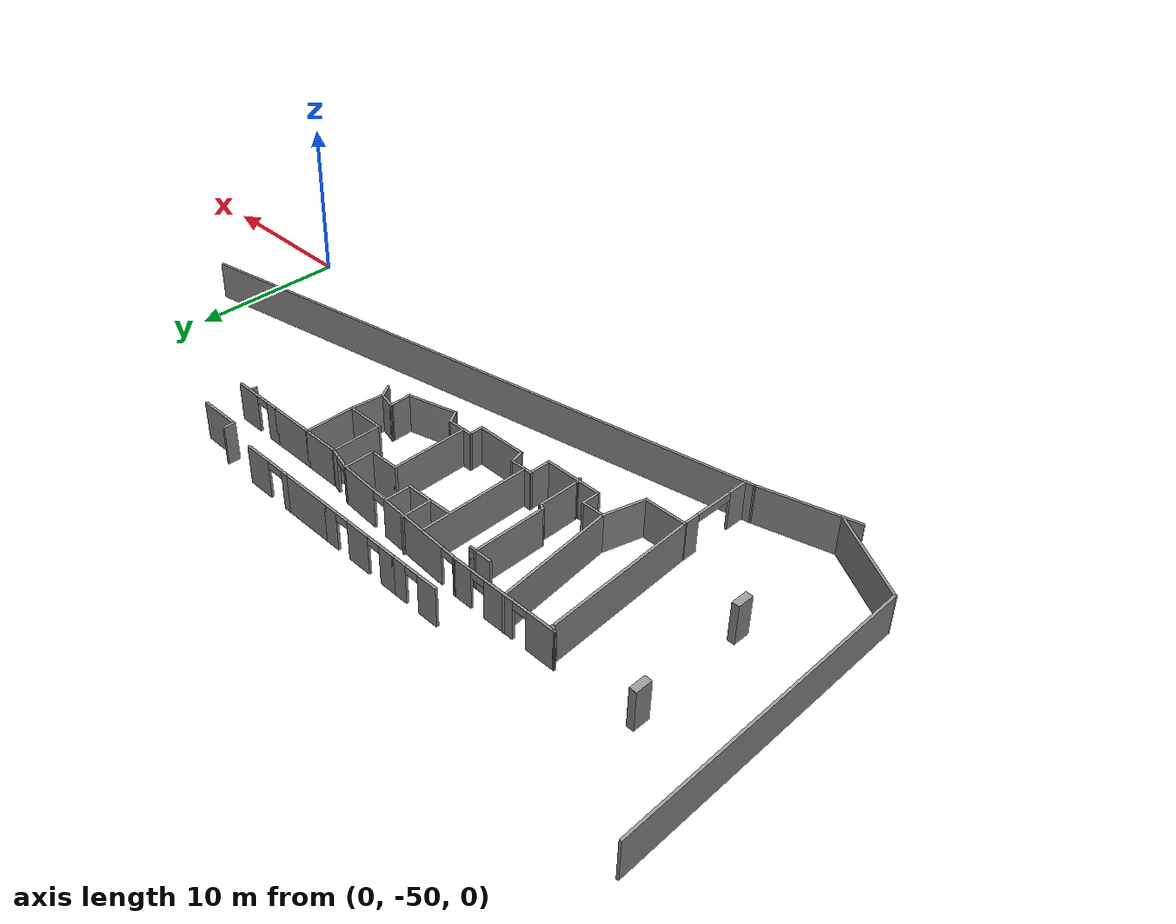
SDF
<sdf version="1.6">
 <model name="car_parking_underground_big_1">
  <pose>-9.36123 -7.37411 0 0 -0 0</pose>
  <link name="Wall_100">
   <collision name="Wall_100_Collision">
    <geometry><box><size>2.75 0.15 2.5</size></box></geometry>
    <pose>0 0 1.25 0 -0 0</pose>
   </collision>
   <visual name="Wall_100_Visual">
    <pose>0 0 1.25 0 -0 0</pose>
    <geometry><box><size>2.75 0.15 2.5</size></box></geometry>
    <material>
     <script><uri>file://media/materials/scripts/gazebo.material</uri><name>Gazebo/Grey</name></script>
     <ambient>1 1 1 1</ambient>
    </material>
    <meta><layer>0</layer></meta>
   </visual>
   <pose>-23.5938 -36.292 0 0 -0 -1.8326</pose>
  </link>
  <link name="Wall_101">
   <collision name="Wall_101_Collision">
    <geometry><box><size>2.75 0.15 2.5</size></box></geometry>
    <pose>0 0 1.25 0 -0 0</pose>
   </collision>
   <visual name="Wall_101_Visual">
    <pose>0 0 1.25 0 -0 0</pose>
    <geometry><box><size>2.75 0.15 2.5</size></box></geometry>
    <material>
     <script><uri>file://media/materials/scripts/gazebo.material</uri><name>Gazebo/Grey</name></script>
     <ambient>1 1 1 1</ambient>
    </material>
    <meta><layer>0</layer></meta>
   </visual>
   <pose>-25.2302 -37.5477 0 0 -0 3.14159</pose>
  </link>
  <link name="Wall_104">
   <pose>-26.5302 -39.9727 0 0 -0 -1.5708</pose>
   <visual name="Wall_104_Visual_0">
    <pose>-1.95044 0 1.25 0 -0 0</pose>
    <geometry><box><size>1.09911 0.15 2.5</size></box></geometry>
    <material>
     <script><uri>file://media/materials/scripts/gazebo.material</uri><name>Gazebo/Grey</name></script>
     <ambient>1 1 1 1</ambient>
    </material>
    <meta><layer>0</layer></meta>
   </visual>
   <collision name="Wall_104_Collision_0">
    <geometry><box><size>1.09911 0.15 2.5</size></box></geometry>
    <pose>-1.95044 0 1.25 0 -0 0</pose>
   </collision>
   <visual name="Wall_104_Visual_1">
    <pose>1.79956 0 1.25 0 -0 0</pose>
    <geometry><box><size>1.40089 0.15 2.5</size></box></geometry>
    <material>
     <script><uri>file://media/materials/scripts/gazebo.material</uri><name>Gazebo/Grey</name></script>
     <ambient>1 1 1 1</ambient>
    </material>
    <meta><layer>0</layer></meta>
   </visual>
   <collision name="Wall_104_Collision_1">
    <geometry><box><size>1.40089 0.15 2.5</size></box></geometry>
    <pose>1.79956 0 1.25 0 -0 0</pose>
   </collision>
   <visual name="Wall_104_Visual_2">
    <pose>-0.150887 0 2.25 0 -0 0</pose>
    <geometry><box><size>2.5 0.15 0.5</size></box></geometry>
    <material>
     <script><uri>file://media/materials/scripts/gazebo.material</uri><name>Gazebo/Grey</name></script>
     <ambient>1 1 1 1</ambient>
    </material>
    <meta><layer>0</layer></meta>
   </visual>
   <collision name="Wall_104_Collision_2">
    <geometry><box><size>2.5 0.15 0.5</size></box></geometry>
    <pose>-0.150887 0 2.25 0 -0 0</pose>
   </collision>
  </link>
  <link name="Wall_18">
   <collision name="Wall_18_Collision">
    <geometry><box><size>6 0.15 2.5</size></box></geometry>
    <pose>0 0 1.25 0 -0 0</pose>
   </collision>
   <visual name="Wall_18_Visual">
    <pose>0 0 1.25 0 -0 0</pose>
    <geometry><box><size>6 0.15 2.5</size></box></geometry>
    <material>
     <script><uri>file://media/materials/scripts/gazebo.material</uri><name>Gazebo/Grey</name></script>
     <ambient>1 1 1 1</ambient>
    </material>
    <meta><layer>0</layer></meta>
   </visual>
   <pose>-34.2044 -42.241 0 0 -0 2.61799</pose>
  </link>
  <link name="Wall_19">
   <collision name="Wall_19_Collision">
    <geometry><box><size>19.6303 0.15 2.5</size></box></geometry>
    <pose>0 0 1.25 0 -0 0</pose>
   </collision>
   <visual name="Wall_19_Visual">
    <pose>0 0 1.25 0 -0 0</pose>
    <geometry><box><size>19.6303 0.15 2.5</size></box></geometry>
    <material>
     <script><uri>file://media/materials/scripts/gazebo.material</uri><name>Gazebo/Grey</name></script>
     <ambient>1 1 1 1</ambient>
    </material>
    <meta><layer>0</layer></meta>
   </visual>
   <pose>-36.9603 -31.0526 0 0 -0 1.59367</pose>
  </link>
  <link name="Wall_457">
   <collision name="Wall_457_Collision">
    <geometry><box><size>10.0585 0.15 2.5</size></box></geometry>
    <pose>0 0 1.25 0 -0 0</pose>
   </collision>
   <visual name="Wall_457_Visual">
    <pose>0 0 1.25 0 -0 0</pose>
    <geometry><box><size>10.0585 0.15 2.5</size></box></geometry>
    <material>
     <script><uri>file://media/materials/scripts/gazebo.material</uri><name>Gazebo/Grey</name></script>
     <ambient>1 1 1 1</ambient>
    </material>
    <meta><layer>0</layer></meta>
   </visual>
   <pose>-26.7892 -32.6002 0 0 -0 1.62309</pose>
  </link>
  <link name="Wall_458">
   <collision name="Wall_458_Collision">
    <geometry><box><size>0.5 0.15 2.5</size></box></geometry>
    <pose>0 0 1.25 0 -0 0</pose>
   </collision>
   <visual name="Wall_458_Visual">
    <pose>0 0 1.25 0 -0 0</pose>
    <geometry><box><size>0.5 0.15 2.5</size></box></geometry>
    <material>
     <script><uri>file://media/materials/scripts/gazebo.material</uri><name>Gazebo/Grey</name></script>
     <ambient>1 1 1 1</ambient>
    </material>
    <meta><layer>0</layer></meta>
   </visual>
   <pose>-27.1997 -27.5652 0 0 -0 2.61799</pose>
  </link>
  <link name="Wall_652">
   <collision name="Wall_652_Collision">
    <geometry><box><size>6 0.15 2.5</size></box></geometry>
    <pose>0 0 1.25 0 -0 0</pose>
   </collision>
   <visual name="Wall_652_Visual">
    <pose>0 0 1.25 0 -0 0</pose>
    <geometry><box><size>6 0.15 2.5</size></box></geometry>
    <material>
     <script><uri>file://media/materials/scripts/gazebo.material</uri><name>Gazebo/Grey</name></script>
     <ambient>1 1 1 1</ambient>
    </material>
    <meta><layer>0</layer></meta>
   </visual>
   <pose>-29.9002 -43.2359 0 0 -0 0.261799</pose>
  </link>
  <link name="Wall_653">
   <collision name="Wall_653_Collision">
    <geometry><box><size>38.8036 0.15 2.5</size></box></geometry>
    <pose>0 0 1.25 0 -0 0</pose>
   </collision>
   <visual name="Wall_653_Visual">
    <pose>0 0 1.25 0 -0 0</pose>
    <geometry><box><size>38.8036 0.15 2.5</size></box></geometry>
    <material>
     <script><uri>file://media/materials/scripts/gazebo.material</uri><name>Gazebo/Grey</name></script>
     <ambient>1 1 1 1</ambient>
    </material>
    <meta><layer>0</layer></meta>
   </visual>
   <pose>-8.07245 -38.9528 0 0 -0 0.18347</pose>
  </link>
  <link name="Wall_687">
   <collision name="Wall_687_Collision">
    <geometry><box><size>1.05022 0.45 2.5</size></box></geometry>
    <pose>0 0 1.25 0 -0 0</pose>
   </collision>
   <visual name="Wall_687_Visual">
    <pose>0 0 1.25 0 -0 0</pose>
    <geometry><box><size>1.05022 0.45 2.5</size></box></geometry>
    <material>
     <script><uri>file://media/materials/scripts/gazebo.material</uri><name>Gazebo/Grey</name></script>
     <ambient>1 1 1 1</ambient>
    </material>
    <meta><layer>0</layer></meta>
   </visual>
   <pose>-32.2333 -27.9329 0 0 -0 -1.5708</pose>
  </link>
  <link name="Wall_689">
   <collision name="Wall_689_Collision">
    <geometry><box><size>1.05 0.45 2.5</size></box></geometry>
    <pose>0 0 1.25 0 -0 0</pose>
   </collision>
   <visual name="Wall_689_Visual">
    <pose>0 0 1.25 0 -0 0</pose>
    <geometry><box><size>1.05 0.45 2.5</size></box></geometry>
    <material>
     <script><uri>file://media/materials/scripts/gazebo.material</uri><name>Gazebo/Grey</name></script>
     <ambient>1 1 1 1</ambient>
    </material>
    <meta><layer>0</layer></meta>
   </visual>
   <pose>-31.9473 -35.3724 0 0 -0 -1.5708</pose>
  </link>
  <link name="Wall_698">
   <pose>-23.9263 -27.4777 0 0 -0 0</pose>
   <visual name="Wall_698_Visual_0">
    <pose>-2.55593 0 1.25 0 -0 0</pose>
    <geometry><box><size>1.88815 0.15 2.5</size></box></geometry>
    <material>
     <script><uri>file://media/materials/scripts/gazebo.material</uri><name>Gazebo/Grey</name></script>
     <ambient>1 1 1 1</ambient>
    </material>
    <meta><layer>0</layer></meta>
   </visual>
   <collision name="Wall_698_Collision_0">
    <geometry><box><size>1.88815 0.15 2.5</size></box></geometry>
    <pose>-2.55593 0 1.25 0 -0 0</pose>
   </collision>
   <visual name="Wall_698_Visual_1">
    <pose>0.293776 0 1.25 0 -0 0</pose>
    <geometry><box><size>2.01126 0.15 2.5</size></box></geometry>
    <material>
     <script><uri>file://media/materials/scripts/gazebo.material</uri><name>Gazebo/Grey</name></script>
     <ambient>1 1 1 1</ambient>
    </material>
    <meta><layer>0</layer></meta>
   </visual>
   <collision name="Wall_698_Collision_1">
    <geometry><box><size>2.01126 0.15 2.5</size></box></geometry>
    <pose>0.293776 0 1.25 0 -0 0</pose>
   </collision>
   <visual name="Wall_698_Visual_2">
    <pose>2.8497 0 1.25 0 -0 0</pose>
    <geometry><box><size>1.30059 0.15 2.5</size></box></geometry>
    <material>
     <script><uri>file://media/materials/scripts/gazebo.material</uri><name>Gazebo/Grey</name></script>
     <ambient>1 1 1 1</ambient>
    </material>
    <meta><layer>0</layer></meta>
   </visual>
   <collision name="Wall_698_Collision_2">
    <geometry><box><size>1.30059 0.15 2.5</size></box></geometry>
    <pose>2.8497 0 1.25 0 -0 0</pose>
   </collision>
   <visual name="Wall_698_Visual_3">
    <pose>-1.16185 0 2.25 0 -0 0</pose>
    <geometry><box><size>0.9 0.15 0.5</size></box></geometry>
    <material>
     <script><uri>file://media/materials/scripts/gazebo.material</uri><name>Gazebo/Grey</name></script>
     <ambient>1 1 1 1</ambient>
    </material>
    <meta><layer>0</layer></meta>
   </visual>
   <collision name="Wall_698_Collision_3">
    <geometry><box><size>0.9 0.15 0.5</size></box></geometry>
    <pose>-1.16185 0 2.25 0 -0 0</pose>
   </collision>
   <visual name="Wall_698_Visual_4">
    <pose>1.74941 0 2.25 0 -0 0</pose>
    <geometry><box><size>0.9 0.15 0.5</size></box></geometry>
    <material>
     <script><uri>file://media/materials/scripts/gazebo.material</uri><name>Gazebo/Grey</name></script>
     <ambient>1 1 1 1</ambient>
    </material>
    <meta><layer>0</layer></meta>
   </visual>
   <collision name="Wall_698_Collision_4">
    <geometry><box><size>0.9 0.15 0.5</size></box></geometry>
    <pose>1.74941 0 2.25 0 -0 0</pose>
   </collision>
  </link>
  <link name="Wall_699">
   <pose>-15.8646 -27.7688 0 0 -0 -0.062715</pose>
   <visual name="Wall_699_Visual_0">
    <pose>-4.63374 0 1.25 0 -0 0</pose>
    <geometry><box><size>0.174125 0.15 2.5</size></box></geometry>
    <material>
     <script><uri>file://media/materials/scripts/gazebo.material</uri><name>Gazebo/Grey</name></script>
     <ambient>1 1 1 1</ambient>
    </material>
    <meta><layer>0</layer></meta>
   </visual>
   <collision name="Wall_699_Collision_0">
    <geometry><box><size>0.174125 0.15 2.5</size></box></geometry>
    <pose>-4.63374 0 1.25 0 -0 0</pose>
   </collision>
   <visual name="Wall_699_Visual_1">
    <pose>-1.24354 0 1.25 0 -0 0</pose>
    <geometry><box><size>4.80628 0.15 2.5</size></box></geometry>
    <material>
     <script><uri>file://media/materials/scripts/gazebo.material</uri><name>Gazebo/Grey</name></script>
     <ambient>1 1 1 1</ambient>
    </material>
    <meta><layer>0</layer></meta>
   </visual>
   <collision name="Wall_699_Collision_1">
    <geometry><box><size>4.80628 0.15 2.5</size></box></geometry>
    <pose>-1.24354 0 1.25 0 -0 0</pose>
   </collision>
   <visual name="Wall_699_Visual_2">
    <pose>3.3902 0 1.25 0 -0 0</pose>
    <geometry><box><size>2.6612 0.15 2.5</size></box></geometry>
    <material>
     <script><uri>file://media/materials/scripts/gazebo.material</uri><name>Gazebo/Grey</name></script>
     <ambient>1 1 1 1</ambient>
    </material>
    <meta><layer>0</layer></meta>
   </visual>
   <collision name="Wall_699_Collision_2">
    <geometry><box><size>2.6612 0.15 2.5</size></box></geometry>
    <pose>3.3902 0 1.25 0 -0 0</pose>
   </collision>
   <visual name="Wall_699_Visual_3">
    <pose>-4.09668 0 2.25 0 -0 0</pose>
    <geometry><box><size>0.9 0.15 0.5</size></box></geometry>
    <material>
     <script><uri>file://media/materials/scripts/gazebo.material</uri><name>Gazebo/Grey</name></script>
     <ambient>1 1 1 1</ambient>
    </material>
    <meta><layer>0</layer></meta>
   </visual>
   <collision name="Wall_699_Collision_3">
    <geometry><box><size>0.9 0.15 0.5</size></box></geometry>
    <pose>-4.09668 0 2.25 0 -0 0</pose>
   </collision>
   <visual name="Wall_699_Visual_4">
    <pose>1.6096 0 2.25 0 -0 0</pose>
    <geometry><box><size>0.9 0.15 0.5</size></box></geometry>
    <material>
     <script><uri>file://media/materials/scripts/gazebo.material</uri><name>Gazebo/Grey</name></script>
     <ambient>1 1 1 1</ambient>
    </material>
    <meta><layer>0</layer></meta>
   </visual>
   <collision name="Wall_699_Collision_4">
    <geometry><box><size>0.9 0.15 0.5</size></box></geometry>
    <pose>1.6096 0 2.25 0 -0 0</pose>
   </collision>
  </link>
  <link name="Wall_700">
   <pose>-10.4552 -28.2671 0 0 -0 -0.261799</pose>
   <visual name="Wall_700_Visual_0">
    <pose>-0.768246 0 1.25 0 -0 0</pose>
    <geometry><box><size>0.213508 0.15 2.5</size></box></geometry>
    <material>
     <script><uri>file://media/materials/scripts/gazebo.material</uri><name>Gazebo/Grey</name></script>
     <ambient>1 1 1 1</ambient>
    </material>
    <meta><layer>0</layer></meta>
   </visual>
   <collision name="Wall_700_Collision_0">
    <geometry><box><size>0.213508 0.15 2.5</size></box></geometry>
    <pose>-0.768246 0 1.25 0 -0 0</pose>
   </collision>
   <visual name="Wall_700_Visual_1">
    <pose>0.556754 0 1.25 0 -0 0</pose>
    <geometry><box><size>0.636492 0.15 2.5</size></box></geometry>
    <material>
     <script><uri>file://media/materials/scripts/gazebo.material</uri><name>Gazebo/Grey</name></script>
     <ambient>1 1 1 1</ambient>
    </material>
    <meta><layer>0</layer></meta>
   </visual>
   <collision name="Wall_700_Collision_1">
    <geometry><box><size>0.636492 0.15 2.5</size></box></geometry>
    <pose>0.556754 0 1.25 0 -0 0</pose>
   </collision>
   <visual name="Wall_700_Visual_2">
    <pose>-0.211492 0 2.25 0 -0 0</pose>
    <geometry><box><size>0.9 0.15 0.5</size></box></geometry>
    <material>
     <script><uri>file://media/materials/scripts/gazebo.material</uri><name>Gazebo/Grey</name></script>
     <ambient>1 1 1 1</ambient>
    </material>
    <meta><layer>0</layer></meta>
   </visual>
   <collision name="Wall_700_Collision_2">
    <geometry><box><size>0.9 0.15 0.5</size></box></geometry>
    <pose>-0.211492 0 2.25 0 -0 0</pose>
   </collision>
  </link>
  <link name="Wall_701">
   <collision name="Wall_701_Collision">
    <geometry><box><size>2.5 0.15 2.5</size></box></geometry>
    <pose>0 0 1.25 0 -0 0</pose>
   </collision>
   <visual name="Wall_701_Visual">
    <pose>0 0 1.25 0 -0 0</pose>
    <geometry><box><size>2.5 0.15 2.5</size></box></geometry>
    <material>
     <script><uri>file://media/materials/scripts/gazebo.material</uri><name>Gazebo/Grey</name></script>
     <ambient>1 1 1 1</ambient>
    </material>
    <meta><layer>0</layer></meta>
   </visual>
   <pose>-8.50746 -28.4741 0 0 -0 0</pose>
  </link>
  <link name="Wall_702">
   <collision name="Wall_702_Collision">
    <geometry><box><size>3 0.15 2.5</size></box></geometry>
    <pose>0 0 1.25 0 -0 0</pose>
   </collision>
   <visual name="Wall_702_Visual">
    <pose>0 0 1.25 0 -0 0</pose>
    <geometry><box><size>3 0.15 2.5</size></box></geometry>
    <material>
     <script><uri>file://media/materials/scripts/gazebo.material</uri><name>Gazebo/Grey</name></script>
     <ambient>1 1 1 1</ambient>
    </material>
    <meta><layer>0</layer></meta>
   </visual>
   <pose>-5.90745 -28.4741 0 0 -0 0</pose>
  </link>
  <link name="Wall_703">
   <pose>-2.80746 -28.4741 0 0 -0 0</pose>
   <visual name="Wall_703_Visual_0">
    <pose>-1.29346 0 1.25 0 -0 0</pose>
    <geometry><box><size>0.913086 0.15 2.5</size></box></geometry>
    <material>
     <script><uri>file://media/materials/scripts/gazebo.material</uri><name>Gazebo/Grey</name></script>
     <ambient>1 1 1 1</ambient>
    </material>
    <meta><layer>0</layer></meta>
   </visual>
   <collision name="Wall_703_Collision_0">
    <geometry><box><size>0.913086 0.15 2.5</size></box></geometry>
    <pose>-1.29346 0 1.25 0 -0 0</pose>
   </collision>
   <visual name="Wall_703_Visual_1">
    <pose>0.906543 0 1.25 0 -0 0</pose>
    <geometry><box><size>1.68691 0.15 2.5</size></box></geometry>
    <material>
     <script><uri>file://media/materials/scripts/gazebo.material</uri><name>Gazebo/Grey</name></script>
     <ambient>1 1 1 1</ambient>
    </material>
    <meta><layer>0</layer></meta>
   </visual>
   <collision name="Wall_703_Collision_1">
    <geometry><box><size>1.68691 0.15 2.5</size></box></geometry>
    <pose>0.906543 0 1.25 0 -0 0</pose>
   </collision>
   <visual name="Wall_703_Visual_2">
    <pose>-0.386914 0 2.25 0 -0 0</pose>
    <geometry><box><size>0.9 0.15 0.5</size></box></geometry>
    <material>
     <script><uri>file://media/materials/scripts/gazebo.material</uri><name>Gazebo/Grey</name></script>
     <ambient>1 1 1 1</ambient>
    </material>
    <meta><layer>0</layer></meta>
   </visual>
   <collision name="Wall_703_Collision_2">
    <geometry><box><size>0.9 0.15 0.5</size></box></geometry>
    <pose>-0.386914 0 2.25 0 -0 0</pose>
   </collision>
  </link>
  <link name="Wall_706">
   <collision name="Wall_706_Collision">
    <geometry><box><size>7.78016 0.15 2.5</size></box></geometry>
    <pose>0 0 1.25 0 -0 0</pose>
   </collision>
   <visual name="Wall_706_Visual">
    <pose>0 0 1.25 0 -0 0</pose>
    <geometry><box><size>7.78016 0.15 2.5</size></box></geometry>
    <material>
     <script><uri>file://media/materials/scripts/gazebo.material</uri><name>Gazebo/Grey</name></script>
     <ambient>1 1 1 1</ambient>
    </material>
    <meta><layer>0</layer></meta>
   </visual>
   <pose>-23.6459 -31.241 0 0 -0 -1.46877</pose>
  </link>
  <link name="Wall_708">
   <collision name="Wall_708_Collision">
    <geometry><box><size>1.5 0.15 2.5</size></box></geometry>
    <pose>0 0 1.25 0 -0 0</pose>
   </collision>
   <visual name="Wall_708_Visual">
    <pose>0 0 1.25 0 -0 0</pose>
    <geometry><box><size>1.5 0.15 2.5</size></box></geometry>
    <material>
     <script><uri>file://media/materials/scripts/gazebo.material</uri><name>Gazebo/Grey</name></script>
     <ambient>1 1 1 1</ambient>
    </material>
    <meta><layer>0</layer></meta>
   </visual>
   <pose>-21.1409 -28.5732 0 0 -0 0</pose>
  </link>
  <link name="Wall_709">
   <collision name="Wall_709_Collision">
    <geometry><box><size>0.5 0.15 2.5</size></box></geometry>
    <pose>0 0 1.25 0 -0 0</pose>
   </collision>
   <visual name="Wall_709_Visual">
    <pose>0 0 1.25 0 -0 0</pose>
    <geometry><box><size>0.5 0.15 2.5</size></box></geometry>
    <material>
     <script><uri>file://media/materials/scripts/gazebo.material</uri><name>Gazebo/Grey</name></script>
     <ambient>1 1 1 1</ambient>
    </material>
    <meta><layer>0</layer></meta>
   </visual>
   <pose>-20.6409 -28.5732 0 0 -0 3.14159</pose>
  </link>
  <link name="Wall_710">
   <collision name="Wall_710_Collision">
    <geometry><box><size>4.75 0.15 2.5</size></box></geometry>
    <pose>0 0 1.25 0 -0 0</pose>
   </collision>
   <visual name="Wall_710_Visual">
    <pose>0 0 1.25 0 -0 0</pose>
    <geometry><box><size>4.75 0.15 2.5</size></box></geometry>
    <material>
     <script><uri>file://media/materials/scripts/gazebo.material</uri><name>Gazebo/Grey</name></script>
     <ambient>1 1 1 1</ambient>
    </material>
    <meta><layer>0</layer></meta>
   </visual>
   <pose>-20.8159 -30.8732 0 0 -0 -1.5708</pose>
  </link>
  <link name="Wall_711">
   <collision name="Wall_711_Collision">
    <geometry><box><size>0.5 0.15 2.5</size></box></geometry>
    <pose>0 0 1.25 0 -0 0</pose>
   </collision>
   <visual name="Wall_711_Visual">
    <pose>0 0 1.25 0 -0 0</pose>
    <geometry><box><size>0.5 0.15 2.5</size></box></geometry>
    <material>
     <script><uri>file://media/materials/scripts/gazebo.material</uri><name>Gazebo/Grey</name></script>
     <ambient>1 1 1 1</ambient>
    </material>
    <meta><layer>0</layer></meta>
   </visual>
   <pose>-20.6643 -33.2607 0 0 -0 -0.523599</pose>
  </link>
  <link name="Wall_712">
   <collision name="Wall_712_Collision">
    <geometry><box><size>2.75 0.15 2.5</size></box></geometry>
    <pose>0 0 1.25 0 -0 0</pose>
   </collision>
   <visual name="Wall_712_Visual">
    <pose>0 0 1.25 0 -0 0</pose>
    <geometry><box><size>2.75 0.15 2.5</size></box></geometry>
    <material>
     <script><uri>file://media/materials/scripts/gazebo.material</uri><name>Gazebo/Grey</name></script>
     <ambient>1 1 1 1</ambient>
    </material>
    <meta><layer>0</layer></meta>
   </visual>
   <pose>-20.5127 -34.6482 0 0 -0 -1.5708</pose>
  </link>
  <link name="Wall_713">
   <collision name="Wall_713_Collision">
    <geometry><box><size>0.5 0.15 2.5</size></box></geometry>
    <pose>0 0 1.25 0 -0 0</pose>
   </collision>
   <visual name="Wall_713_Visual">
    <pose>0 0 1.25 0 -0 0</pose>
    <geometry><box><size>0.5 0.15 2.5</size></box></geometry>
    <material>
     <script><uri>file://media/materials/scripts/gazebo.material</uri><name>Gazebo/Grey</name></script>
     <ambient>1 1 1 1</ambient>
    </material>
    <meta><layer>0</layer></meta>
   </visual>
   <pose>-20.4674 -36.1173 0 0 -0 -1.309</pose>
  </link>
  <link name="Wall_715">
   <collision name="Wall_715_Collision">
    <geometry><box><size>7.25 0.15 2.5</size></box></geometry>
    <pose>0 0 1.25 0 -0 0</pose>
   </collision>
   <visual name="Wall_715_Visual">
    <pose>0 0 1.25 0 -0 0</pose>
    <geometry><box><size>7.25 0.15 2.5</size></box></geometry>
    <material>
     <script><uri>file://media/materials/scripts/gazebo.material</uri><name>Gazebo/Grey</name></script>
     <ambient>1 1 1 1</ambient>
    </material>
    <meta><layer>0</layer></meta>
   </visual>
   <pose>-17.8515 -31.2425 0 0 -0 1.5708</pose>
  </link>
  <link name="Wall_717">
   <collision name="Wall_717_Collision">
    <geometry><box><size>2 0.15 2.5</size></box></geometry>
    <pose>0 0 1.25 0 -0 0</pose>
   </collision>
   <visual name="Wall_717_Visual">
    <pose>0 0 1.25 0 -0 0</pose>
    <geometry><box><size>2 0.15 2.5</size></box></geometry>
    <material>
     <script><uri>file://media/materials/scripts/gazebo.material</uri><name>Gazebo/Grey</name></script>
     <ambient>1 1 1 1</ambient>
    </material>
    <meta><layer>0</layer></meta>
   </visual>
   <pose>-16.3967 -28.5526 0 0 -0 -1.5708</pose>
  </link>
  <link name="Wall_718">
   <collision name="Wall_718_Collision">
    <geometry><box><size>1.75 0.15 2.5</size></box></geometry>
    <pose>0 0 1.25 0 -0 0</pose>
   </collision>
   <visual name="Wall_718_Visual">
    <pose>0 0 1.25 0 -0 0</pose>
    <geometry><box><size>1.75 0.15 2.5</size></box></geometry>
    <material>
     <script><uri>file://media/materials/scripts/gazebo.material</uri><name>Gazebo/Grey</name></script>
     <ambient>1 1 1 1</ambient>
    </material>
    <meta><layer>0</layer></meta>
   </visual>
   <pose>-15.5967 -29.4776 0 0 -0 0</pose>
  </link>
  <link name="Wall_719">
   <collision name="Wall_719_Collision">
    <geometry><box><size>1.75 0.15 2.5</size></box></geometry>
    <pose>0 0 1.25 0 -0 0</pose>
   </collision>
   <visual name="Wall_719_Visual">
    <pose>0 0 1.25 0 -0 0</pose>
    <geometry><box><size>1.75 0.15 2.5</size></box></geometry>
    <material>
     <script><uri>file://media/materials/scripts/gazebo.material</uri><name>Gazebo/Grey</name></script>
     <ambient>1 1 1 1</ambient>
    </material>
    <meta><layer>0</layer></meta>
   </visual>
   <pose>-14.7967 -28.6776 0 0 -0 1.5708</pose>
  </link>
  <link name="Wall_721">
   <collision name="Wall_721_Collision">
    <geometry><box><size>1.49632 0.15 2.5</size></box></geometry>
    <pose>0 0 1.25 0 -0 0</pose>
   </collision>
   <visual name="Wall_721_Visual">
    <pose>0 0 1.25 0 -0 0</pose>
    <geometry><box><size>1.49632 0.15 2.5</size></box></geometry>
    <material>
     <script><uri>file://media/materials/scripts/gazebo.material</uri><name>Gazebo/Grey</name></script>
     <ambient>1 1 1 1</ambient>
    </material>
    <meta><layer>0</layer></meta>
   </visual>
   <pose>-17.0696 -29.4982 0 0 -0 0.03064</pose>
  </link>
  <link name="Wall_724">
   <collision name="Wall_724_Collision">
    <geometry><box><size>2 0.15 2.5</size></box></geometry>
    <pose>0 0 1.25 0 -0 0</pose>
   </collision>
   <visual name="Wall_724_Visual">
    <pose>0 0 1.25 0 -0 0</pose>
    <geometry><box><size>2 0.15 2.5</size></box></geometry>
    <material>
     <script><uri>file://media/materials/scripts/gazebo.material</uri><name>Gazebo/Grey</name></script>
     <ambient>1 1 1 1</ambient>
    </material>
    <meta><layer>0</layer></meta>
   </visual>
   <pose>-11.2279 -28.985 0 0 -0 -1.5708</pose>
  </link>
  <link name="Wall_725">
   <collision name="Wall_725_Collision">
    <geometry><box><size>2 0.15 2.5</size></box></geometry>
    <pose>0 0 1.25 0 -0 0</pose>
   </collision>
   <visual name="Wall_725_Visual">
    <pose>0 0 1.25 0 -0 0</pose>
    <geometry><box><size>2 0.15 2.5</size></box></geometry>
    <material>
     <script><uri>file://media/materials/scripts/gazebo.material</uri><name>Gazebo/Grey</name></script>
     <ambient>1 1 1 1</ambient>
    </material>
    <meta><layer>0</layer></meta>
   </visual>
   <pose>-12.1529 -29.91 0 0 -0 3.14159</pose>
  </link>
  <link name="Wall_726">
   <collision name="Wall_726_Collision">
    <geometry><box><size>5 0.15 2.5</size></box></geometry>
    <pose>0 0 1.25 0 -0 0</pose>
   </collision>
   <visual name="Wall_726_Visual">
    <pose>0 0 1.25 0 -0 0</pose>
    <geometry><box><size>5 0.15 2.5</size></box></geometry>
    <material>
     <script><uri>file://media/materials/scripts/gazebo.material</uri><name>Gazebo/Grey</name></script>
     <ambient>1 1 1 1</ambient>
    </material>
    <meta><layer>0</layer></meta>
   </visual>
   <pose>-13.0779 -32.335 0 0 -0 -1.5708</pose>
  </link>
  <link name="Wall_728">
   <collision name="Wall_728_Collision">
    <geometry><box><size>3.25 0.15 2.5</size></box></geometry>
    <pose>0 0 1.25 0 -0 0</pose>
   </collision>
   <visual name="Wall_728_Visual">
    <pose>0 0 1.25 0 -0 0</pose>
    <geometry><box><size>3.25 0.15 2.5</size></box></geometry>
    <material>
     <script><uri>file://media/materials/scripts/gazebo.material</uri><name>Gazebo/Grey</name></script>
     <ambient>1 1 1 1</ambient>
    </material>
    <meta><layer>0</layer></meta>
   </visual>
   <pose>-9.68245 -30.0241 0 0 -0 -1.5708</pose>
  </link>
  <link name="Wall_729">
   <collision name="Wall_729_Collision">
    <geometry><box><size>2.5 0.15 2.5</size></box></geometry>
    <pose>0 0 1.25 0 -0 0</pose>
   </collision>
   <visual name="Wall_729_Visual">
    <pose>0 0 1.25 0 -0 0</pose>
    <geometry><box><size>2.5 0.15 2.5</size></box></geometry>
    <material>
     <script><uri>file://media/materials/scripts/gazebo.material</uri><name>Gazebo/Grey</name></script>
     <ambient>1 1 1 1</ambient>
    </material>
    <meta><layer>0</layer></meta>
   </visual>
   <pose>-8.50746 -31.5741 0 0 -0 0</pose>
  </link>
  <link name="Wall_730">
   <collision name="Wall_730_Collision">
    <geometry><box><size>3.25 0.15 2.5</size></box></geometry>
    <pose>0 0 1.25 0 -0 0</pose>
   </collision>
   <visual name="Wall_730_Visual">
    <pose>0 0 1.25 0 -0 0</pose>
    <geometry><box><size>3.25 0.15 2.5</size></box></geometry>
    <material>
     <script><uri>file://media/materials/scripts/gazebo.material</uri><name>Gazebo/Grey</name></script>
     <ambient>1 1 1 1</ambient>
    </material>
    <meta><layer>0</layer></meta>
   </visual>
   <pose>-7.33246 -30.0241 0 0 -0 1.5708</pose>
  </link>
  <link name="Wall_732">
   <collision name="Wall_732_Collision">
    <geometry><box><size>2.21374 0.15 2.5</size></box></geometry>
    <pose>0 0 1.25 0 -0 0</pose>
   </collision>
   <visual name="Wall_732_Visual">
    <pose>0 0 1.25 0 -0 0</pose>
    <geometry><box><size>2.21374 0.15 2.5</size></box></geometry>
    <material>
     <script><uri>file://media/materials/scripts/gazebo.material</uri><name>Gazebo/Grey</name></script>
     <ambient>1 1 1 1</ambient>
    </material>
    <meta><layer>0</layer></meta>
   </visual>
   <pose>-7.44394 -32.5999 0 0 -0 -1.67905</pose>
  </link>
  <link name="Wall_742">
   <collision name="Wall_742_Collision">
    <geometry><box><size>0.5 0.15 2.5</size></box></geometry>
    <pose>0 0 1.25 0 -0 0</pose>
   </collision>
   <visual name="Wall_742_Visual">
    <pose>0 0 1.25 0 -0 0</pose>
    <geometry><box><size>0.5 0.15 2.5</size></box></geometry>
    <material>
     <script><uri>file://media/materials/scripts/gazebo.material</uri><name>Gazebo/Grey</name></script>
     <ambient>1 1 1 1</ambient>
    </material>
    <meta><layer>0</layer></meta>
   </visual>
   <pose>-1.98083 -28.6607 0 0 -0 -1.8326</pose>
  </link>
  <link name="Wall_787">
   <pose>-19.8973 -25.3956 0 0 -0 0</pose>
   <visual name="Wall_787_Visual_0">
    <pose>-0.956318 0 1.25 0 -0 0</pose>
    <geometry><box><size>1.33736 0.15 2.5</size></box></geometry>
    <material>
     <script><uri>file://media/materials/scripts/gazebo.material</uri><name>Gazebo/Grey</name></script>
     <ambient>1 1 1 1</ambient>
    </material>
    <meta><layer>0</layer></meta>
   </visual>
   <collision name="Wall_787_Collision_0">
    <geometry><box><size>1.33736 0.15 2.5</size></box></geometry>
    <pose>-0.956318 0 1.25 0 -0 0</pose>
   </collision>
   <visual name="Wall_787_Visual_1">
    <pose>1.11868 0 1.25 0 -0 0</pose>
    <geometry><box><size>1.01264 0.15 2.5</size></box></geometry>
    <material>
     <script><uri>file://media/materials/scripts/gazebo.material</uri><name>Gazebo/Grey</name></script>
     <ambient>1 1 1 1</ambient>
    </material>
    <meta><layer>0</layer></meta>
   </visual>
   <collision name="Wall_787_Collision_1">
    <geometry><box><size>1.01264 0.15 2.5</size></box></geometry>
    <pose>1.11868 0 1.25 0 -0 0</pose>
   </collision>
   <visual name="Wall_787_Visual_2">
    <pose>0.162363 0 2.25 0 -0 0</pose>
    <geometry><box><size>0.9 0.15 0.5</size></box></geometry>
    <material>
     <script><uri>file://media/materials/scripts/gazebo.material</uri><name>Gazebo/Grey</name></script>
     <ambient>1 1 1 1</ambient>
    </material>
    <meta><layer>0</layer></meta>
   </visual>
   <collision name="Wall_787_Collision_2">
    <geometry><box><size>0.9 0.15 0.5</size></box></geometry>
    <pose>0.162363 0 2.25 0 -0 0</pose>
   </collision>
  </link>
  <link name="Wall_788">
   <pose>-15.6723 -25.3956 0 0 -0 0</pose>
   <visual name="Wall_788_Visual_0">
    <pose>-2.1848 0 1.25 0 -0 0</pose>
    <geometry><box><size>1.13041 0.15 2.5</size></box></geometry>
    <material>
     <script><uri>file://media/materials/scripts/gazebo.material</uri><name>Gazebo/Grey</name></script>
     <ambient>1 1 1 1</ambient>
    </material>
    <meta><layer>0</layer></meta>
   </visual>
   <collision name="Wall_788_Collision_0">
    <geometry><box><size>1.13041 0.15 2.5</size></box></geometry>
    <pose>-2.1848 0 1.25 0 -0 0</pose>
   </collision>
   <visual name="Wall_788_Visual_1">
    <pose>0.087665 0 1.25 0 -0 0</pose>
    <geometry><box><size>1.61451 0.15 2.5</size></box></geometry>
    <material>
     <script><uri>file://media/materials/scripts/gazebo.material</uri><name>Gazebo/Grey</name></script>
     <ambient>1 1 1 1</ambient>
    </material>
    <meta><layer>0</layer></meta>
   </visual>
   <collision name="Wall_788_Collision_1">
    <geometry><box><size>1.61451 0.15 2.5</size></box></geometry>
    <pose>0.087665 0 1.25 0 -0 0</pose>
   </collision>
   <visual name="Wall_788_Visual_2">
    <pose>2.27246 0 1.25 0 -0 0</pose>
    <geometry><box><size>0.955079 0.15 2.5</size></box></geometry>
    <material>
     <script><uri>file://media/materials/scripts/gazebo.material</uri><name>Gazebo/Grey</name></script>
     <ambient>1 1 1 1</ambient>
    </material>
    <meta><layer>0</layer></meta>
   </visual>
   <collision name="Wall_788_Collision_2">
    <geometry><box><size>0.955079 0.15 2.5</size></box></geometry>
    <pose>2.27246 0 1.25 0 -0 0</pose>
   </collision>
   <visual name="Wall_788_Visual_3">
    <pose>-1.16959 0 2.25 0 -0 0</pose>
    <geometry><box><size>0.9 0.15 0.5</size></box></geometry>
    <material>
     <script><uri>file://media/materials/scripts/gazebo.material</uri><name>Gazebo/Grey</name></script>
     <ambient>1 1 1 1</ambient>
    </material>
    <meta><layer>0</layer></meta>
   </visual>
   <collision name="Wall_788_Collision_3">
    <geometry><box><size>0.9 0.15 0.5</size></box></geometry>
    <pose>-1.16959 0 2.25 0 -0 0</pose>
   </collision>
   <visual name="Wall_788_Visual_4">
    <pose>1.34492 0 2.25 0 -0 0</pose>
    <geometry><box><size>0.9 0.15 0.5</size></box></geometry>
    <material>
     <script><uri>file://media/materials/scripts/gazebo.material</uri><name>Gazebo/Grey</name></script>
     <ambient>1 1 1 1</ambient>
    </material>
    <meta><layer>0</layer></meta>
   </visual>
   <collision name="Wall_788_Collision_4">
    <geometry><box><size>0.9 0.15 0.5</size></box></geometry>
    <pose>1.34492 0 2.25 0 -0 0</pose>
   </collision>
  </link>
  <link name="Wall_789">
   <collision name="Wall_789_Collision">
    <geometry><box><size>3.5 0.15 2.5</size></box></geometry>
    <pose>0 0 1.25 0 -0 0</pose>
   </collision>
   <visual name="Wall_789_Visual">
    <pose>0 0 1.25 0 -0 0</pose>
    <geometry><box><size>3.5 0.15 2.5</size></box></geometry>
    <material>
     <script><uri>file://media/materials/scripts/gazebo.material</uri><name>Gazebo/Grey</name></script>
     <ambient>1 1 1 1</ambient>
    </material>
    <meta><layer>0</layer></meta>
   </visual>
   <pose>-11.3223 -25.3956 0 0 -0 0</pose>
  </link>
  <link name="Wall_790">
   <pose>-7.97232 -25.3956 0 0 -0 0</pose>
   <visual name="Wall_790_Visual_0">
    <pose>-1.51357 0 1.25 0 -0 0</pose>
    <geometry><box><size>0.472853 0.15 2.5</size></box></geometry>
    <material>
     <script><uri>file://media/materials/scripts/gazebo.material</uri><name>Gazebo/Grey</name></script>
     <ambient>1 1 1 1</ambient>
    </material>
    <meta><layer>0</layer></meta>
   </visual>
   <collision name="Wall_790_Collision_0">
    <geometry><box><size>0.472853 0.15 2.5</size></box></geometry>
    <pose>-1.51357 0 1.25 0 -0 0</pose>
   </collision>
   <visual name="Wall_790_Visual_1">
    <pose>0.836427 0 1.25 0 -0 0</pose>
    <geometry><box><size>1.82715 0.15 2.5</size></box></geometry>
    <material>
     <script><uri>file://media/materials/scripts/gazebo.material</uri><name>Gazebo/Grey</name></script>
     <ambient>1 1 1 1</ambient>
    </material>
    <meta><layer>0</layer></meta>
   </visual>
   <collision name="Wall_790_Collision_1">
    <geometry><box><size>1.82715 0.15 2.5</size></box></geometry>
    <pose>0.836427 0 1.25 0 -0 0</pose>
   </collision>
   <visual name="Wall_790_Visual_2">
    <pose>-0.677147 0 2.25 0 -0 0</pose>
    <geometry><box><size>1.2 0.15 0.5</size></box></geometry>
    <material>
     <script><uri>file://media/materials/scripts/gazebo.material</uri><name>Gazebo/Grey</name></script>
     <ambient>1 1 1 1</ambient>
    </material>
    <meta><layer>0</layer></meta>
   </visual>
   <collision name="Wall_790_Collision_2">
    <geometry><box><size>1.2 0.15 0.5</size></box></geometry>
    <pose>-0.677147 0 2.25 0 -0 0</pose>
   </collision>
  </link>
  <link name="Wall_792">
   <collision name="Wall_792_Collision">
    <geometry><box><size>0.75 0.15 2.5</size></box></geometry>
    <pose>0 0 1.25 0 -0 0</pose>
   </collision>
   <visual name="Wall_792_Visual">
    <pose>0 0 1.25 0 -0 0</pose>
    <geometry><box><size>0.75 0.15 2.5</size></box></geometry>
    <material>
     <script><uri>file://media/materials/scripts/gazebo.material</uri><name>Gazebo/Grey</name></script>
     <ambient>1 1 1 1</ambient>
    </material>
    <meta><layer>0</layer></meta>
   </visual>
   <pose>-3.94732 -25.6956 0 0 -0 -1.5708</pose>
  </link>
  <link name="Wall_793">
   <collision name="Wall_793_Collision">
    <geometry><box><size>2.75 0.15 2.5</size></box></geometry>
    <pose>0 0 1.25 0 -0 0</pose>
   </collision>
   <visual name="Wall_793_Visual">
    <pose>0 0 1.25 0 -0 0</pose>
    <geometry><box><size>2.75 0.15 2.5</size></box></geometry>
    <material>
     <script><uri>file://media/materials/scripts/gazebo.material</uri><name>Gazebo/Grey</name></script>
     <ambient>1 1 1 1</ambient>
    </material>
    <meta><layer>0</layer></meta>
   </visual>
   <pose>-2.64732 -25.9956 0 0 -0 0</pose>
  </link>
  <link name="Wall_86">
   <collision name="Wall_86_Collision">
    <geometry><box><size>1 0.15 2.5</size></box></geometry>
    <pose>0 0 1.25 0 -0 0</pose>
   </collision>
   <visual name="Wall_86_Visual">
    <pose>0 0 1.25 0 -0 0</pose>
    <geometry><box><size>1 0.15 2.5</size></box></geometry>
    <material>
     <script><uri>file://media/materials/scripts/gazebo.material</uri><name>Gazebo/Grey</name></script>
     <ambient>1 1 1 1</ambient>
    </material>
    <meta><layer>0</layer></meta>
   </visual>
   <pose>-7.34292 -33.9938 0 0 -0 2.0944</pose>
  </link>
  <link name="Wall_87">
   <collision name="Wall_87_Collision">
    <geometry><box><size>1.25 0.15 2.5</size></box></geometry>
    <pose>0 0 1.25 0 -0 0</pose>
   </collision>
   <visual name="Wall_87_Visual">
    <pose>0 0 1.25 0 -0 0</pose>
    <geometry><box><size>1.25 0.15 2.5</size></box></geometry>
    <material>
     <script><uri>file://media/materials/scripts/gazebo.material</uri><name>Gazebo/Grey</name></script>
     <ambient>1 1 1 1</ambient>
    </material>
    <meta><layer>0</layer></meta>
   </visual>
   <pose>-8.08668 -33.4834 0 0 -0 2.87979</pose>
  </link>
  <link name="Wall_88">
   <collision name="Wall_88_Collision">
    <geometry><box><size>1.5 0.15 2.5</size></box></geometry>
    <pose>0 0 1.25 0 -0 0</pose>
   </collision>
   <visual name="Wall_88_Visual">
    <pose>0 0 1.25 0 -0 0</pose>
    <geometry><box><size>1.5 0.15 2.5</size></box></geometry>
    <material>
     <script><uri>file://media/materials/scripts/gazebo.material</uri><name>Gazebo/Grey</name></script>
     <ambient>1 1 1 1</ambient>
    </material>
    <meta><layer>0</layer></meta>
   </visual>
   <pose>-8.61794 -34.0161 0 0 -0 -1.5708</pose>
  </link>
  <link name="Wall_89">
   <collision name="Wall_89_Collision">
    <geometry><box><size>3.25 0.15 2.5</size></box></geometry>
    <pose>0 0 1.25 0 -0 0</pose>
   </collision>
   <visual name="Wall_89_Visual">
    <pose>0 0 1.25 0 -0 0</pose>
    <geometry><box><size>3.25 0.15 2.5</size></box></geometry>
    <material>
     <script><uri>file://media/materials/scripts/gazebo.material</uri><name>Gazebo/Grey</name></script>
     <ambient>1 1 1 1</ambient>
    </material>
    <meta><layer>0</layer></meta>
   </visual>
   <pose>-10.1151 -35.0922 0 0 -0 -2.87979</pose>
  </link>
  <link name="Wall_90">
   <collision name="Wall_90_Collision">
    <geometry><box><size>1 0.15 2.5</size></box></geometry>
    <pose>0 0 1.25 0 -0 0</pose>
   </collision>
   <visual name="Wall_90_Visual">
    <pose>0 0 1.25 0 -0 0</pose>
    <geometry><box><size>1 0.15 2.5</size></box></geometry>
    <material>
     <script><uri>file://media/materials/scripts/gazebo.material</uri><name>Gazebo/Grey</name></script>
     <ambient>1 1 1 1</ambient>
    </material>
    <meta><layer>0</layer></meta>
   </visual>
   <pose>-11.8248 -35.1253 0 0 -0 2.0944</pose>
  </link>
  <link name="Wall_91">
   <collision name="Wall_91_Collision">
    <geometry><box><size>1.75 0.15 2.5</size></box></geometry>
    <pose>0 0 1.25 0 -0 0</pose>
   </collision>
   <visual name="Wall_91_Visual">
    <pose>0 0 1.25 0 -0 0</pose>
    <geometry><box><size>1.75 0.15 2.5</size></box></geometry>
    <material>
     <script><uri>file://media/materials/scripts/gazebo.material</uri><name>Gazebo/Grey</name></script>
     <ambient>1 1 1 1</ambient>
    </material>
    <meta><layer>0</layer></meta>
   </visual>
   <pose>-12.8373 -34.7573 0 0 -0 3.14159</pose>
  </link>
  <link name="Wall_92">
   <collision name="Wall_92_Collision">
    <geometry><box><size>1 0.15 2.5</size></box></geometry>
    <pose>0 0 1.25 0 -0 0</pose>
   </collision>
   <visual name="Wall_92_Visual">
    <pose>0 0 1.25 0 -0 0</pose>
    <geometry><box><size>1 0.15 2.5</size></box></geometry>
    <material>
     <script><uri>file://media/materials/scripts/gazebo.material</uri><name>Gazebo/Grey</name></script>
     <ambient>1 1 1 1</ambient>
    </material>
    <meta><layer>0</layer></meta>
   </visual>
   <pose>-13.6373 -35.1823 0 0 -0 -1.5708</pose>
  </link>
  <link name="Wall_93">
   <collision name="Wall_93_Collision">
    <geometry><box><size>3.25 0.15 2.5</size></box></geometry>
    <pose>0 0 1.25 0 -0 0</pose>
   </collision>
   <visual name="Wall_93_Visual">
    <pose>0 0 1.25 0 -0 0</pose>
    <geometry><box><size>3.25 0.15 2.5</size></box></geometry>
    <material>
     <script><uri>file://media/materials/scripts/gazebo.material</uri><name>Gazebo/Grey</name></script>
     <ambient>1 1 1 1</ambient>
    </material>
    <meta><layer>0</layer></meta>
   </visual>
   <pose>-15.1873 -35.6073 0 0 -0 3.14159</pose>
  </link>
  <link name="Wall_94">
   <collision name="Wall_94_Collision">
    <geometry><box><size>1 0.15 2.5</size></box></geometry>
    <pose>0 0 1.25 0 -0 0</pose>
   </collision>
   <visual name="Wall_94_Visual">
    <pose>0 0 1.25 0 -0 0</pose>
    <geometry><box><size>1 0.15 2.5</size></box></geometry>
    <material>
     <script><uri>file://media/materials/scripts/gazebo.material</uri><name>Gazebo/Grey</name></script>
     <ambient>1 1 1 1</ambient>
    </material>
    <meta><layer>0</layer></meta>
   </visual>
   <pose>-16.8473 -35.1968 0 0 -0 1.8326</pose>
  </link>
  <link name="Wall_95">
   <collision name="Wall_95_Collision">
    <geometry><box><size>1.5 0.15 2.5</size></box></geometry>
    <pose>0 0 1.25 0 -0 0</pose>
   </collision>
   <visual name="Wall_95_Visual">
    <pose>0 0 1.25 0 -0 0</pose>
    <geometry><box><size>1.5 0.15 2.5</size></box></geometry>
    <material>
     <script><uri>file://media/materials/scripts/gazebo.material</uri><name>Gazebo/Grey</name></script>
     <ambient>1 1 1 1</ambient>
    </material>
    <meta><layer>0</layer></meta>
   </visual>
   <pose>-17.6323 -34.7862 0 0 -0 3.14159</pose>
  </link>
  <link name="Wall_96">
   <collision name="Wall_96_Collision">
    <geometry><box><size>1.5 0.15 2.5</size></box></geometry>
    <pose>0 0 1.25 0 -0 0</pose>
   </collision>
   <visual name="Wall_96_Visual">
    <pose>0 0 1.25 0 -0 0</pose>
    <geometry><box><size>1.5 0.15 2.5</size></box></geometry>
    <material>
     <script><uri>file://media/materials/scripts/gazebo.material</uri><name>Gazebo/Grey</name></script>
     <ambient>1 1 1 1</ambient>
    </material>
    <meta><layer>0</layer></meta>
   </visual>
   <pose>-18.3073 -35.4612 0 0 -0 -1.5708</pose>
  </link>
  <link name="Wall_97">
   <collision name="Wall_97_Collision">
    <geometry><box><size>3.75 0.15 2.5</size></box></geometry>
    <pose>0 0 1.25 0 -0 0</pose>
   </collision>
   <visual name="Wall_97_Visual">
    <pose>0 0 1.25 0 -0 0</pose>
    <geometry><box><size>3.75 0.15 2.5</size></box></geometry>
    <material>
     <script><uri>file://media/materials/scripts/gazebo.material</uri><name>Gazebo/Grey</name></script>
     <ambient>1 1 1 1</ambient>
    </material>
    <meta><layer>0</layer></meta>
   </visual>
   <pose>-20.1073 -36.1362 0 0 -0 3.14159</pose>
  </link>
  <link name="Wall_98">
   <collision name="Wall_98_Collision">
    <geometry><box><size>1.25 0.15 2.5</size></box></geometry>
    <pose>0 0 1.25 0 -0 0</pose>
   </collision>
   <visual name="Wall_98_Visual">
    <pose>0 0 1.25 0 -0 0</pose>
    <geometry><box><size>1.25 0.15 2.5</size></box></geometry>
    <material>
     <script><uri>file://media/materials/scripts/gazebo.material</uri><name>Gazebo/Grey</name></script>
     <ambient>1 1 1 1</ambient>
    </material>
    <meta><layer>0</layer></meta>
   </visual>
   <pose>-21.9073 -35.5862 0 0 -0 1.5708</pose>
  </link>
  <link name="Wall_99">
   <collision name="Wall_99_Collision">
    <geometry><box><size>1.5 0.15 2.5</size></box></geometry>
    <pose>0 0 1.25 0 -0 0</pose>
   </collision>
   <visual name="Wall_99_Visual">
    <pose>0 0 1.25 0 -0 0</pose>
    <geometry><box><size>1.5 0.15 2.5</size></box></geometry>
    <material>
     <script><uri>file://media/materials/scripts/gazebo.material</uri><name>Gazebo/Grey</name></script>
     <ambient>1 1 1 1</ambient>
    </material>
    <meta><layer>0</layer></meta>
   </visual>
   <pose>-22.5823 -35.0362 0 0 -0 3.14159</pose>
  </link>
  <static>1</static>
 </model>
</sdf>
